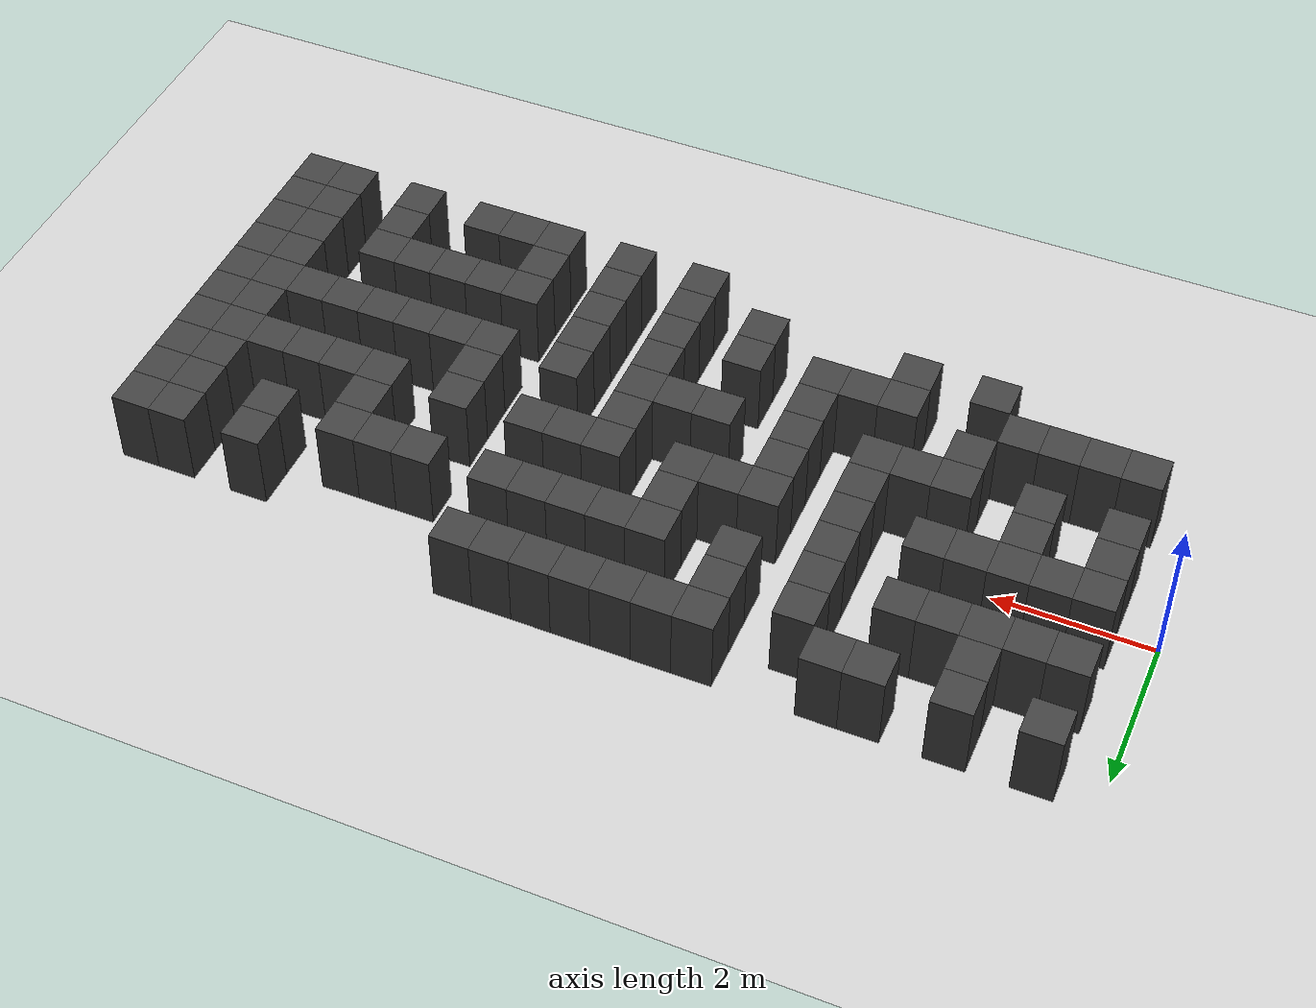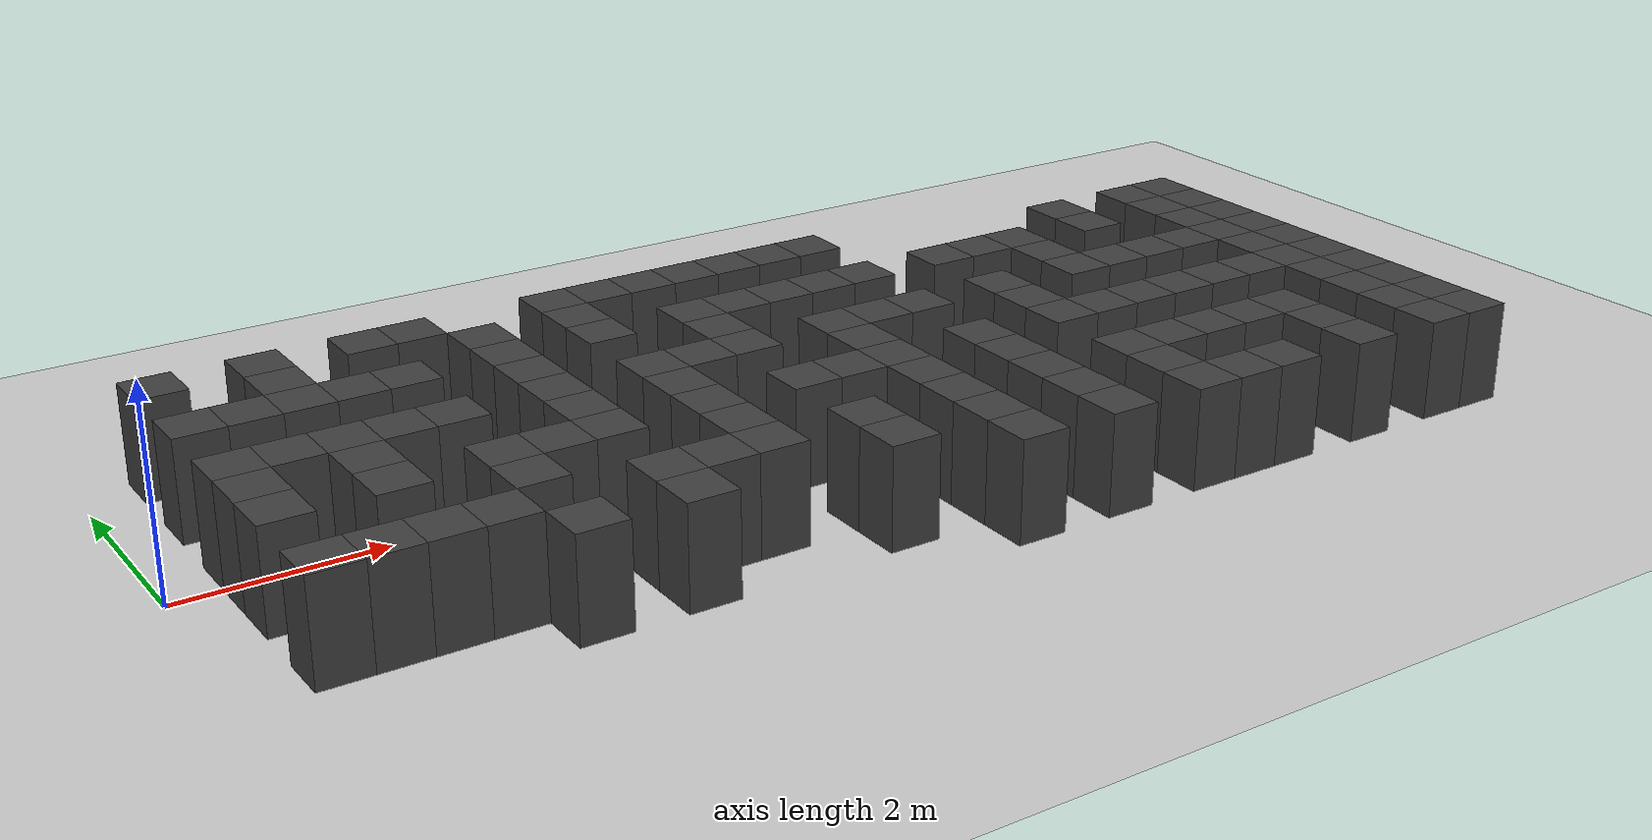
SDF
<sdf version="1.7">
 <world name="map_16603">
  <model name="ground_plane">
   <static>true</static>
   <link name="link">
    <collision name="collision">
     <geometry><plane><normal>0 0 1</normal><size>200 200</size></plane></geometry>
    </collision>
    <visual name="visual">
     <geometry><plane><normal>0 0 1</normal><size>200 200</size></plane></geometry>
     <material><ambient>0.8 0.8 0.8 1</ambient><diffuse>0.8 0.8 0.8 1</diffuse></material>
    </visual>
   </link>
  </model>
  <model name="maze_environment">
   <static>true</static>
   <link name="wall_501">
    <pose>0.750 2.250 0.500 0 0 0</pose>
    <collision name="col"><geometry><box><size>0.5 0.5 1.0</size></box></geometry></collision>
    <visual name="vis">
     <geometry><box><size>0.5 0.5 1.0</size></box></geometry>
     <material><ambient>0.15 0.15 0.15 1</ambient><diffuse>0.25 0.25 0.25 1</diffuse></material>
    </visual>
   </link>
   <link name="wall_502">
    <pose>1.750 2.250 0.500 0 0 0</pose>
    <collision name="col"><geometry><box><size>0.5 0.5 1.0</size></box></geometry></collision>
    <visual name="vis">
     <geometry><box><size>0.5 0.5 1.0</size></box></geometry>
     <material><ambient>0.15 0.15 0.15 1</ambient><diffuse>0.25 0.25 0.25 1</diffuse></material>
    </visual>
   </link>
   <link name="wall_503">
    <pose>2.750 2.250 0.500 0 0 0</pose>
    <collision name="col"><geometry><box><size>0.5 0.5 1.0</size></box></geometry></collision>
    <visual name="vis">
     <geometry><box><size>0.5 0.5 1.0</size></box></geometry>
     <material><ambient>0.15 0.15 0.15 1</ambient><diffuse>0.25 0.25 0.25 1</diffuse></material>
    </visual>
   </link>
   <link name="wall_504">
    <pose>3.250 2.250 0.500 0 0 0</pose>
    <collision name="col"><geometry><box><size>0.5 0.5 1.0</size></box></geometry></collision>
    <visual name="vis">
     <geometry><box><size>0.5 0.5 1.0</size></box></geometry>
     <material><ambient>0.15 0.15 0.15 1</ambient><diffuse>0.25 0.25 0.25 1</diffuse></material>
    </visual>
   </link>
   <link name="wall_505">
    <pose>4.750 2.250 0.500 0 0 0</pose>
    <collision name="col"><geometry><box><size>0.5 0.5 1.0</size></box></geometry></collision>
    <visual name="vis">
     <geometry><box><size>0.5 0.5 1.0</size></box></geometry>
     <material><ambient>0.15 0.15 0.15 1</ambient><diffuse>0.25 0.25 0.25 1</diffuse></material>
    </visual>
   </link>
   <link name="wall_506">
    <pose>5.250 2.250 0.500 0 0 0</pose>
    <collision name="col"><geometry><box><size>0.5 0.5 1.0</size></box></geometry></collision>
    <visual name="vis">
     <geometry><box><size>0.5 0.5 1.0</size></box></geometry>
     <material><ambient>0.15 0.15 0.15 1</ambient><diffuse>0.25 0.25 0.25 1</diffuse></material>
    </visual>
   </link>
   <link name="wall_507">
    <pose>5.750 2.250 0.500 0 0 0</pose>
    <collision name="col"><geometry><box><size>0.5 0.5 1.0</size></box></geometry></collision>
    <visual name="vis">
     <geometry><box><size>0.5 0.5 1.0</size></box></geometry>
     <material><ambient>0.15 0.15 0.15 1</ambient><diffuse>0.25 0.25 0.25 1</diffuse></material>
    </visual>
   </link>
   <link name="wall_508">
    <pose>6.250 2.250 0.500 0 0 0</pose>
    <collision name="col"><geometry><box><size>0.5 0.5 1.0</size></box></geometry></collision>
    <visual name="vis">
     <geometry><box><size>0.5 0.5 1.0</size></box></geometry>
     <material><ambient>0.15 0.15 0.15 1</ambient><diffuse>0.25 0.25 0.25 1</diffuse></material>
    </visual>
   </link>
   <link name="wall_509">
    <pose>6.750 2.250 0.500 0 0 0</pose>
    <collision name="col"><geometry><box><size>0.5 0.5 1.0</size></box></geometry></collision>
    <visual name="vis">
     <geometry><box><size>0.5 0.5 1.0</size></box></geometry>
     <material><ambient>0.15 0.15 0.15 1</ambient><diffuse>0.25 0.25 0.25 1</diffuse></material>
    </visual>
   </link>
   <link name="wall_510">
    <pose>7.250 2.250 0.500 0 0 0</pose>
    <collision name="col"><geometry><box><size>0.5 0.5 1.0</size></box></geometry></collision>
    <visual name="vis">
     <geometry><box><size>0.5 0.5 1.0</size></box></geometry>
     <material><ambient>0.15 0.15 0.15 1</ambient><diffuse>0.25 0.25 0.25 1</diffuse></material>
    </visual>
   </link>
   <link name="wall_511">
    <pose>7.750 2.250 0.500 0 0 0</pose>
    <collision name="col"><geometry><box><size>0.5 0.5 1.0</size></box></geometry></collision>
    <visual name="vis">
     <geometry><box><size>0.5 0.5 1.0</size></box></geometry>
     <material><ambient>0.15 0.15 0.15 1</ambient><diffuse>0.25 0.25 0.25 1</diffuse></material>
    </visual>
   </link>
   <link name="wall_525">
    <pose>1.750 1.750 0.500 0 0 0</pose>
    <collision name="col"><geometry><box><size>0.5 0.5 1.0</size></box></geometry></collision>
    <visual name="vis">
     <geometry><box><size>0.5 0.5 1.0</size></box></geometry>
     <material><ambient>0.15 0.15 0.15 1</ambient><diffuse>0.25 0.25 0.25 1</diffuse></material>
    </visual>
   </link>
   <link name="wall_526">
    <pose>3.750 1.750 0.500 0 0 0</pose>
    <collision name="col"><geometry><box><size>0.5 0.5 1.0</size></box></geometry></collision>
    <visual name="vis">
     <geometry><box><size>0.5 0.5 1.0</size></box></geometry>
     <material><ambient>0.15 0.15 0.15 1</ambient><diffuse>0.25 0.25 0.25 1</diffuse></material>
    </visual>
   </link>
   <link name="wall_527">
    <pose>4.750 1.750 0.500 0 0 0</pose>
    <collision name="col"><geometry><box><size>0.5 0.5 1.0</size></box></geometry></collision>
    <visual name="vis">
     <geometry><box><size>0.5 0.5 1.0</size></box></geometry>
     <material><ambient>0.15 0.15 0.15 1</ambient><diffuse>0.25 0.25 0.25 1</diffuse></material>
    </visual>
   </link>
   <link name="wall_528">
    <pose>10.750 1.750 0.500 0 0 0</pose>
    <collision name="col"><geometry><box><size>0.5 0.5 1.0</size></box></geometry></collision>
    <visual name="vis">
     <geometry><box><size>0.5 0.5 1.0</size></box></geometry>
     <material><ambient>0.15 0.15 0.15 1</ambient><diffuse>0.25 0.25 0.25 1</diffuse></material>
    </visual>
   </link>
   <link name="wall_529">
    <pose>11.750 1.750 0.500 0 0 0</pose>
    <collision name="col"><geometry><box><size>0.5 0.5 1.0</size></box></geometry></collision>
    <visual name="vis">
     <geometry><box><size>0.5 0.5 1.0</size></box></geometry>
     <material><ambient>0.15 0.15 0.15 1</ambient><diffuse>0.25 0.25 0.25 1</diffuse></material>
    </visual>
   </link>
   <link name="wall_530">
    <pose>12.250 1.750 0.500 0 0 0</pose>
    <collision name="col"><geometry><box><size>0.5 0.5 1.0</size></box></geometry></collision>
    <visual name="vis">
     <geometry><box><size>0.5 0.5 1.0</size></box></geometry>
     <material><ambient>0.15 0.15 0.15 1</ambient><diffuse>0.25 0.25 0.25 1</diffuse></material>
    </visual>
   </link>
   <link name="wall_551">
    <pose>0.750 1.250 0.500 0 0 0</pose>
    <collision name="col"><geometry><box><size>0.5 0.5 1.0</size></box></geometry></collision>
    <visual name="vis">
     <geometry><box><size>0.5 0.5 1.0</size></box></geometry>
     <material><ambient>0.15 0.15 0.15 1</ambient><diffuse>0.25 0.25 0.25 1</diffuse></material>
    </visual>
   </link>
   <link name="wall_552">
    <pose>1.250 1.250 0.500 0 0 0</pose>
    <collision name="col"><geometry><box><size>0.5 0.5 1.0</size></box></geometry></collision>
    <visual name="vis">
     <geometry><box><size>0.5 0.5 1.0</size></box></geometry>
     <material><ambient>0.15 0.15 0.15 1</ambient><diffuse>0.25 0.25 0.25 1</diffuse></material>
    </visual>
   </link>
   <link name="wall_553">
    <pose>1.750 1.250 0.500 0 0 0</pose>
    <collision name="col"><geometry><box><size>0.5 0.5 1.0</size></box></geometry></collision>
    <visual name="vis">
     <geometry><box><size>0.5 0.5 1.0</size></box></geometry>
     <material><ambient>0.15 0.15 0.15 1</ambient><diffuse>0.25 0.25 0.25 1</diffuse></material>
    </visual>
   </link>
   <link name="wall_554">
    <pose>2.250 1.250 0.500 0 0 0</pose>
    <collision name="col"><geometry><box><size>0.5 0.5 1.0</size></box></geometry></collision>
    <visual name="vis">
     <geometry><box><size>0.5 0.5 1.0</size></box></geometry>
     <material><ambient>0.15 0.15 0.15 1</ambient><diffuse>0.25 0.25 0.25 1</diffuse></material>
    </visual>
   </link>
   <link name="wall_555">
    <pose>2.750 1.250 0.500 0 0 0</pose>
    <collision name="col"><geometry><box><size>0.5 0.5 1.0</size></box></geometry></collision>
    <visual name="vis">
     <geometry><box><size>0.5 0.5 1.0</size></box></geometry>
     <material><ambient>0.15 0.15 0.15 1</ambient><diffuse>0.25 0.25 0.25 1</diffuse></material>
    </visual>
   </link>
   <link name="wall_556">
    <pose>3.750 1.250 0.500 0 0 0</pose>
    <collision name="col"><geometry><box><size>0.5 0.5 1.0</size></box></geometry></collision>
    <visual name="vis">
     <geometry><box><size>0.5 0.5 1.0</size></box></geometry>
     <material><ambient>0.15 0.15 0.15 1</ambient><diffuse>0.25 0.25 0.25 1</diffuse></material>
    </visual>
   </link>
   <link name="wall_557">
    <pose>4.750 1.250 0.500 0 0 0</pose>
    <collision name="col"><geometry><box><size>0.5 0.5 1.0</size></box></geometry></collision>
    <visual name="vis">
     <geometry><box><size>0.5 0.5 1.0</size></box></geometry>
     <material><ambient>0.15 0.15 0.15 1</ambient><diffuse>0.25 0.25 0.25 1</diffuse></material>
    </visual>
   </link>
   <link name="wall_558">
    <pose>5.750 1.250 0.500 0 0 0</pose>
    <collision name="col"><geometry><box><size>0.5 0.5 1.0</size></box></geometry></collision>
    <visual name="vis">
     <geometry><box><size>0.5 0.5 1.0</size></box></geometry>
     <material><ambient>0.15 0.15 0.15 1</ambient><diffuse>0.25 0.25 0.25 1</diffuse></material>
    </visual>
   </link>
   <link name="wall_559">
    <pose>6.250 1.250 0.500 0 0 0</pose>
    <collision name="col"><geometry><box><size>0.5 0.5 1.0</size></box></geometry></collision>
    <visual name="vis">
     <geometry><box><size>0.5 0.5 1.0</size></box></geometry>
     <material><ambient>0.15 0.15 0.15 1</ambient><diffuse>0.25 0.25 0.25 1</diffuse></material>
    </visual>
   </link>
   <link name="wall_560">
    <pose>6.750 1.250 0.500 0 0 0</pose>
    <collision name="col"><geometry><box><size>0.5 0.5 1.0</size></box></geometry></collision>
    <visual name="vis">
     <geometry><box><size>0.5 0.5 1.0</size></box></geometry>
     <material><ambient>0.15 0.15 0.15 1</ambient><diffuse>0.25 0.25 0.25 1</diffuse></material>
    </visual>
   </link>
   <link name="wall_561">
    <pose>7.250 1.250 0.500 0 0 0</pose>
    <collision name="col"><geometry><box><size>0.5 0.5 1.0</size></box></geometry></collision>
    <visual name="vis">
     <geometry><box><size>0.5 0.5 1.0</size></box></geometry>
     <material><ambient>0.15 0.15 0.15 1</ambient><diffuse>0.25 0.25 0.25 1</diffuse></material>
    </visual>
   </link>
   <link name="wall_562">
    <pose>7.750 1.250 0.500 0 0 0</pose>
    <collision name="col"><geometry><box><size>0.5 0.5 1.0</size></box></geometry></collision>
    <visual name="vis">
     <geometry><box><size>0.5 0.5 1.0</size></box></geometry>
     <material><ambient>0.15 0.15 0.15 1</ambient><diffuse>0.25 0.25 0.25 1</diffuse></material>
    </visual>
   </link>
   <link name="wall_563">
    <pose>8.750 1.250 0.500 0 0 0</pose>
    <collision name="col"><geometry><box><size>0.5 0.5 1.0</size></box></geometry></collision>
    <visual name="vis">
     <geometry><box><size>0.5 0.5 1.0</size></box></geometry>
     <material><ambient>0.15 0.15 0.15 1</ambient><diffuse>0.25 0.25 0.25 1</diffuse></material>
    </visual>
   </link>
   <link name="wall_564">
    <pose>9.250 1.250 0.500 0 0 0</pose>
    <collision name="col"><geometry><box><size>0.5 0.5 1.0</size></box></geometry></collision>
    <visual name="vis">
     <geometry><box><size>0.5 0.5 1.0</size></box></geometry>
     <material><ambient>0.15 0.15 0.15 1</ambient><diffuse>0.25 0.25 0.25 1</diffuse></material>
    </visual>
   </link>
   <link name="wall_565">
    <pose>9.750 1.250 0.500 0 0 0</pose>
    <collision name="col"><geometry><box><size>0.5 0.5 1.0</size></box></geometry></collision>
    <visual name="vis">
     <geometry><box><size>0.5 0.5 1.0</size></box></geometry>
     <material><ambient>0.15 0.15 0.15 1</ambient><diffuse>0.25 0.25 0.25 1</diffuse></material>
    </visual>
   </link>
   <link name="wall_566">
    <pose>10.750 1.250 0.500 0 0 0</pose>
    <collision name="col"><geometry><box><size>0.5 0.5 1.0</size></box></geometry></collision>
    <visual name="vis">
     <geometry><box><size>0.5 0.5 1.0</size></box></geometry>
     <material><ambient>0.15 0.15 0.15 1</ambient><diffuse>0.25 0.25 0.25 1</diffuse></material>
    </visual>
   </link>
   <link name="wall_567">
    <pose>11.750 1.250 0.500 0 0 0</pose>
    <collision name="col"><geometry><box><size>0.5 0.5 1.0</size></box></geometry></collision>
    <visual name="vis">
     <geometry><box><size>0.5 0.5 1.0</size></box></geometry>
     <material><ambient>0.15 0.15 0.15 1</ambient><diffuse>0.25 0.25 0.25 1</diffuse></material>
    </visual>
   </link>
   <link name="wall_568">
    <pose>12.250 1.250 0.500 0 0 0</pose>
    <collision name="col"><geometry><box><size>0.5 0.5 1.0</size></box></geometry></collision>
    <visual name="vis">
     <geometry><box><size>0.5 0.5 1.0</size></box></geometry>
     <material><ambient>0.15 0.15 0.15 1</ambient><diffuse>0.25 0.25 0.25 1</diffuse></material>
    </visual>
   </link>
   <link name="wall_574">
    <pose>3.750 0.750 0.500 0 0 0</pose>
    <collision name="col"><geometry><box><size>0.5 0.5 1.0</size></box></geometry></collision>
    <visual name="vis">
     <geometry><box><size>0.5 0.5 1.0</size></box></geometry>
     <material><ambient>0.15 0.15 0.15 1</ambient><diffuse>0.25 0.25 0.25 1</diffuse></material>
    </visual>
   </link>
   <link name="wall_575">
    <pose>5.750 0.750 0.500 0 0 0</pose>
    <collision name="col"><geometry><box><size>0.5 0.5 1.0</size></box></geometry></collision>
    <visual name="vis">
     <geometry><box><size>0.5 0.5 1.0</size></box></geometry>
     <material><ambient>0.15 0.15 0.15 1</ambient><diffuse>0.25 0.25 0.25 1</diffuse></material>
    </visual>
   </link>
   <link name="wall_576">
    <pose>9.750 0.750 0.500 0 0 0</pose>
    <collision name="col"><geometry><box><size>0.5 0.5 1.0</size></box></geometry></collision>
    <visual name="vis">
     <geometry><box><size>0.5 0.5 1.0</size></box></geometry>
     <material><ambient>0.15 0.15 0.15 1</ambient><diffuse>0.25 0.25 0.25 1</diffuse></material>
    </visual>
   </link>
   <link name="wall_577">
    <pose>11.750 0.750 0.500 0 0 0</pose>
    <collision name="col"><geometry><box><size>0.5 0.5 1.0</size></box></geometry></collision>
    <visual name="vis">
     <geometry><box><size>0.5 0.5 1.0</size></box></geometry>
     <material><ambient>0.15 0.15 0.15 1</ambient><diffuse>0.25 0.25 0.25 1</diffuse></material>
    </visual>
   </link>
   <link name="wall_578">
    <pose>12.250 0.750 0.500 0 0 0</pose>
    <collision name="col"><geometry><box><size>0.5 0.5 1.0</size></box></geometry></collision>
    <visual name="vis">
     <geometry><box><size>0.5 0.5 1.0</size></box></geometry>
     <material><ambient>0.15 0.15 0.15 1</ambient><diffuse>0.25 0.25 0.25 1</diffuse></material>
    </visual>
   </link>
   <link name="wall_595">
    <pose>0.750 0.250 0.500 0 0 0</pose>
    <collision name="col"><geometry><box><size>0.5 0.5 1.0</size></box></geometry></collision>
    <visual name="vis">
     <geometry><box><size>0.5 0.5 1.0</size></box></geometry>
     <material><ambient>0.15 0.15 0.15 1</ambient><diffuse>0.25 0.25 0.25 1</diffuse></material>
    </visual>
   </link>
   <link name="wall_596">
    <pose>1.250 0.250 0.500 0 0 0</pose>
    <collision name="col"><geometry><box><size>0.5 0.5 1.0</size></box></geometry></collision>
    <visual name="vis">
     <geometry><box><size>0.5 0.5 1.0</size></box></geometry>
     <material><ambient>0.15 0.15 0.15 1</ambient><diffuse>0.25 0.25 0.25 1</diffuse></material>
    </visual>
   </link>
   <link name="wall_597">
    <pose>1.750 0.250 0.500 0 0 0</pose>
    <collision name="col"><geometry><box><size>0.5 0.5 1.0</size></box></geometry></collision>
    <visual name="vis">
     <geometry><box><size>0.5 0.5 1.0</size></box></geometry>
     <material><ambient>0.15 0.15 0.15 1</ambient><diffuse>0.25 0.25 0.25 1</diffuse></material>
    </visual>
   </link>
   <link name="wall_598">
    <pose>2.250 0.250 0.500 0 0 0</pose>
    <collision name="col"><geometry><box><size>0.5 0.5 1.0</size></box></geometry></collision>
    <visual name="vis">
     <geometry><box><size>0.5 0.5 1.0</size></box></geometry>
     <material><ambient>0.15 0.15 0.15 1</ambient><diffuse>0.25 0.25 0.25 1</diffuse></material>
    </visual>
   </link>
   <link name="wall_599">
    <pose>2.750 0.250 0.500 0 0 0</pose>
    <collision name="col"><geometry><box><size>0.5 0.5 1.0</size></box></geometry></collision>
    <visual name="vis">
     <geometry><box><size>0.5 0.5 1.0</size></box></geometry>
     <material><ambient>0.15 0.15 0.15 1</ambient><diffuse>0.25 0.25 0.25 1</diffuse></material>
    </visual>
   </link>
   <link name="wall_600">
    <pose>3.750 0.250 0.500 0 0 0</pose>
    <collision name="col"><geometry><box><size>0.5 0.5 1.0</size></box></geometry></collision>
    <visual name="vis">
     <geometry><box><size>0.5 0.5 1.0</size></box></geometry>
     <material><ambient>0.15 0.15 0.15 1</ambient><diffuse>0.25 0.25 0.25 1</diffuse></material>
    </visual>
   </link>
   <link name="wall_601">
    <pose>4.750 0.250 0.500 0 0 0</pose>
    <collision name="col"><geometry><box><size>0.5 0.5 1.0</size></box></geometry></collision>
    <visual name="vis">
     <geometry><box><size>0.5 0.5 1.0</size></box></geometry>
     <material><ambient>0.15 0.15 0.15 1</ambient><diffuse>0.25 0.25 0.25 1</diffuse></material>
    </visual>
   </link>
   <link name="wall_602">
    <pose>5.250 0.250 0.500 0 0 0</pose>
    <collision name="col"><geometry><box><size>0.5 0.5 1.0</size></box></geometry></collision>
    <visual name="vis">
     <geometry><box><size>0.5 0.5 1.0</size></box></geometry>
     <material><ambient>0.15 0.15 0.15 1</ambient><diffuse>0.25 0.25 0.25 1</diffuse></material>
    </visual>
   </link>
   <link name="wall_603">
    <pose>5.750 0.250 0.500 0 0 0</pose>
    <collision name="col"><geometry><box><size>0.5 0.5 1.0</size></box></geometry></collision>
    <visual name="vis">
     <geometry><box><size>0.5 0.5 1.0</size></box></geometry>
     <material><ambient>0.15 0.15 0.15 1</ambient><diffuse>0.25 0.25 0.25 1</diffuse></material>
    </visual>
   </link>
   <link name="wall_604">
    <pose>6.750 0.250 0.500 0 0 0</pose>
    <collision name="col"><geometry><box><size>0.5 0.5 1.0</size></box></geometry></collision>
    <visual name="vis">
     <geometry><box><size>0.5 0.5 1.0</size></box></geometry>
     <material><ambient>0.15 0.15 0.15 1</ambient><diffuse>0.25 0.25 0.25 1</diffuse></material>
    </visual>
   </link>
   <link name="wall_605">
    <pose>7.250 0.250 0.500 0 0 0</pose>
    <collision name="col"><geometry><box><size>0.5 0.5 1.0</size></box></geometry></collision>
    <visual name="vis">
     <geometry><box><size>0.5 0.5 1.0</size></box></geometry>
     <material><ambient>0.15 0.15 0.15 1</ambient><diffuse>0.25 0.25 0.25 1</diffuse></material>
    </visual>
   </link>
   <link name="wall_606">
    <pose>7.750 0.250 0.500 0 0 0</pose>
    <collision name="col"><geometry><box><size>0.5 0.5 1.0</size></box></geometry></collision>
    <visual name="vis">
     <geometry><box><size>0.5 0.5 1.0</size></box></geometry>
     <material><ambient>0.15 0.15 0.15 1</ambient><diffuse>0.25 0.25 0.25 1</diffuse></material>
    </visual>
   </link>
   <link name="wall_607">
    <pose>8.750 0.250 0.500 0 0 0</pose>
    <collision name="col"><geometry><box><size>0.5 0.5 1.0</size></box></geometry></collision>
    <visual name="vis">
     <geometry><box><size>0.5 0.5 1.0</size></box></geometry>
     <material><ambient>0.15 0.15 0.15 1</ambient><diffuse>0.25 0.25 0.25 1</diffuse></material>
    </visual>
   </link>
   <link name="wall_608">
    <pose>9.750 0.250 0.500 0 0 0</pose>
    <collision name="col"><geometry><box><size>0.5 0.5 1.0</size></box></geometry></collision>
    <visual name="vis">
     <geometry><box><size>0.5 0.5 1.0</size></box></geometry>
     <material><ambient>0.15 0.15 0.15 1</ambient><diffuse>0.25 0.25 0.25 1</diffuse></material>
    </visual>
   </link>
   <link name="wall_609">
    <pose>10.250 0.250 0.500 0 0 0</pose>
    <collision name="col"><geometry><box><size>0.5 0.5 1.0</size></box></geometry></collision>
    <visual name="vis">
     <geometry><box><size>0.5 0.5 1.0</size></box></geometry>
     <material><ambient>0.15 0.15 0.15 1</ambient><diffuse>0.25 0.25 0.25 1</diffuse></material>
    </visual>
   </link>
   <link name="wall_610">
    <pose>10.750 0.250 0.500 0 0 0</pose>
    <collision name="col"><geometry><box><size>0.5 0.5 1.0</size></box></geometry></collision>
    <visual name="vis">
     <geometry><box><size>0.5 0.5 1.0</size></box></geometry>
     <material><ambient>0.15 0.15 0.15 1</ambient><diffuse>0.25 0.25 0.25 1</diffuse></material>
    </visual>
   </link>
   <link name="wall_611">
    <pose>11.250 0.250 0.500 0 0 0</pose>
    <collision name="col"><geometry><box><size>0.5 0.5 1.0</size></box></geometry></collision>
    <visual name="vis">
     <geometry><box><size>0.5 0.5 1.0</size></box></geometry>
     <material><ambient>0.15 0.15 0.15 1</ambient><diffuse>0.25 0.25 0.25 1</diffuse></material>
    </visual>
   </link>
   <link name="wall_612">
    <pose>11.750 0.250 0.500 0 0 0</pose>
    <collision name="col"><geometry><box><size>0.5 0.5 1.0</size></box></geometry></collision>
    <visual name="vis">
     <geometry><box><size>0.5 0.5 1.0</size></box></geometry>
     <material><ambient>0.15 0.15 0.15 1</ambient><diffuse>0.25 0.25 0.25 1</diffuse></material>
    </visual>
   </link>
   <link name="wall_613">
    <pose>12.250 0.250 0.500 0 0 0</pose>
    <collision name="col"><geometry><box><size>0.5 0.5 1.0</size></box></geometry></collision>
    <visual name="vis">
     <geometry><box><size>0.5 0.5 1.0</size></box></geometry>
     <material><ambient>0.15 0.15 0.15 1</ambient><diffuse>0.25 0.25 0.25 1</diffuse></material>
    </visual>
   </link>
   <link name="wall_621">
    <pose>0.750 -0.250 0.500 0 0 0</pose>
    <collision name="col"><geometry><box><size>0.5 0.5 1.0</size></box></geometry></collision>
    <visual name="vis">
     <geometry><box><size>0.5 0.5 1.0</size></box></geometry>
     <material><ambient>0.15 0.15 0.15 1</ambient><diffuse>0.25 0.25 0.25 1</diffuse></material>
    </visual>
   </link>
   <link name="wall_622">
    <pose>1.750 -0.250 0.500 0 0 0</pose>
    <collision name="col"><geometry><box><size>0.5 0.5 1.0</size></box></geometry></collision>
    <visual name="vis">
     <geometry><box><size>0.5 0.5 1.0</size></box></geometry>
     <material><ambient>0.15 0.15 0.15 1</ambient><diffuse>0.25 0.25 0.25 1</diffuse></material>
    </visual>
   </link>
   <link name="wall_623">
    <pose>3.750 -0.250 0.500 0 0 0</pose>
    <collision name="col"><geometry><box><size>0.5 0.5 1.0</size></box></geometry></collision>
    <visual name="vis">
     <geometry><box><size>0.5 0.5 1.0</size></box></geometry>
     <material><ambient>0.15 0.15 0.15 1</ambient><diffuse>0.25 0.25 0.25 1</diffuse></material>
    </visual>
   </link>
   <link name="wall_624">
    <pose>4.750 -0.250 0.500 0 0 0</pose>
    <collision name="col"><geometry><box><size>0.5 0.5 1.0</size></box></geometry></collision>
    <visual name="vis">
     <geometry><box><size>0.5 0.5 1.0</size></box></geometry>
     <material><ambient>0.15 0.15 0.15 1</ambient><diffuse>0.25 0.25 0.25 1</diffuse></material>
    </visual>
   </link>
   <link name="wall_625">
    <pose>6.750 -0.250 0.500 0 0 0</pose>
    <collision name="col"><geometry><box><size>0.5 0.5 1.0</size></box></geometry></collision>
    <visual name="vis">
     <geometry><box><size>0.5 0.5 1.0</size></box></geometry>
     <material><ambient>0.15 0.15 0.15 1</ambient><diffuse>0.25 0.25 0.25 1</diffuse></material>
    </visual>
   </link>
   <link name="wall_626">
    <pose>8.750 -0.250 0.500 0 0 0</pose>
    <collision name="col"><geometry><box><size>0.5 0.5 1.0</size></box></geometry></collision>
    <visual name="vis">
     <geometry><box><size>0.5 0.5 1.0</size></box></geometry>
     <material><ambient>0.15 0.15 0.15 1</ambient><diffuse>0.25 0.25 0.25 1</diffuse></material>
    </visual>
   </link>
   <link name="wall_627">
    <pose>11.750 -0.250 0.500 0 0 0</pose>
    <collision name="col"><geometry><box><size>0.5 0.5 1.0</size></box></geometry></collision>
    <visual name="vis">
     <geometry><box><size>0.5 0.5 1.0</size></box></geometry>
     <material><ambient>0.15 0.15 0.15 1</ambient><diffuse>0.25 0.25 0.25 1</diffuse></material>
    </visual>
   </link>
   <link name="wall_628">
    <pose>12.250 -0.250 0.500 0 0 0</pose>
    <collision name="col"><geometry><box><size>0.5 0.5 1.0</size></box></geometry></collision>
    <visual name="vis">
     <geometry><box><size>0.5 0.5 1.0</size></box></geometry>
     <material><ambient>0.15 0.15 0.15 1</ambient><diffuse>0.25 0.25 0.25 1</diffuse></material>
    </visual>
   </link>
   <link name="wall_646">
    <pose>0.750 -0.750 0.500 0 0 0</pose>
    <collision name="col"><geometry><box><size>0.5 0.5 1.0</size></box></geometry></collision>
    <visual name="vis">
     <geometry><box><size>0.5 0.5 1.0</size></box></geometry>
     <material><ambient>0.15 0.15 0.15 1</ambient><diffuse>0.25 0.25 0.25 1</diffuse></material>
    </visual>
   </link>
   <link name="wall_647">
    <pose>1.750 -0.750 0.500 0 0 0</pose>
    <collision name="col"><geometry><box><size>0.5 0.5 1.0</size></box></geometry></collision>
    <visual name="vis">
     <geometry><box><size>0.5 0.5 1.0</size></box></geometry>
     <material><ambient>0.15 0.15 0.15 1</ambient><diffuse>0.25 0.25 0.25 1</diffuse></material>
    </visual>
   </link>
   <link name="wall_648">
    <pose>2.750 -0.750 0.500 0 0 0</pose>
    <collision name="col"><geometry><box><size>0.5 0.5 1.0</size></box></geometry></collision>
    <visual name="vis">
     <geometry><box><size>0.5 0.5 1.0</size></box></geometry>
     <material><ambient>0.15 0.15 0.15 1</ambient><diffuse>0.25 0.25 0.25 1</diffuse></material>
    </visual>
   </link>
   <link name="wall_649">
    <pose>3.250 -0.750 0.500 0 0 0</pose>
    <collision name="col"><geometry><box><size>0.5 0.5 1.0</size></box></geometry></collision>
    <visual name="vis">
     <geometry><box><size>0.5 0.5 1.0</size></box></geometry>
     <material><ambient>0.15 0.15 0.15 1</ambient><diffuse>0.25 0.25 0.25 1</diffuse></material>
    </visual>
   </link>
   <link name="wall_650">
    <pose>3.750 -0.750 0.500 0 0 0</pose>
    <collision name="col"><geometry><box><size>0.5 0.5 1.0</size></box></geometry></collision>
    <visual name="vis">
     <geometry><box><size>0.5 0.5 1.0</size></box></geometry>
     <material><ambient>0.15 0.15 0.15 1</ambient><diffuse>0.25 0.25 0.25 1</diffuse></material>
    </visual>
   </link>
   <link name="wall_651">
    <pose>4.750 -0.750 0.500 0 0 0</pose>
    <collision name="col"><geometry><box><size>0.5 0.5 1.0</size></box></geometry></collision>
    <visual name="vis">
     <geometry><box><size>0.5 0.5 1.0</size></box></geometry>
     <material><ambient>0.15 0.15 0.15 1</ambient><diffuse>0.25 0.25 0.25 1</diffuse></material>
    </visual>
   </link>
   <link name="wall_652">
    <pose>5.750 -0.750 0.500 0 0 0</pose>
    <collision name="col"><geometry><box><size>0.5 0.5 1.0</size></box></geometry></collision>
    <visual name="vis">
     <geometry><box><size>0.5 0.5 1.0</size></box></geometry>
     <material><ambient>0.15 0.15 0.15 1</ambient><diffuse>0.25 0.25 0.25 1</diffuse></material>
    </visual>
   </link>
   <link name="wall_653">
    <pose>6.250 -0.750 0.500 0 0 0</pose>
    <collision name="col"><geometry><box><size>0.5 0.5 1.0</size></box></geometry></collision>
    <visual name="vis">
     <geometry><box><size>0.5 0.5 1.0</size></box></geometry>
     <material><ambient>0.15 0.15 0.15 1</ambient><diffuse>0.25 0.25 0.25 1</diffuse></material>
    </visual>
   </link>
   <link name="wall_654">
    <pose>6.750 -0.750 0.500 0 0 0</pose>
    <collision name="col"><geometry><box><size>0.5 0.5 1.0</size></box></geometry></collision>
    <visual name="vis">
     <geometry><box><size>0.5 0.5 1.0</size></box></geometry>
     <material><ambient>0.15 0.15 0.15 1</ambient><diffuse>0.25 0.25 0.25 1</diffuse></material>
    </visual>
   </link>
   <link name="wall_655">
    <pose>7.750 -0.750 0.500 0 0 0</pose>
    <collision name="col"><geometry><box><size>0.5 0.5 1.0</size></box></geometry></collision>
    <visual name="vis">
     <geometry><box><size>0.5 0.5 1.0</size></box></geometry>
     <material><ambient>0.15 0.15 0.15 1</ambient><diffuse>0.25 0.25 0.25 1</diffuse></material>
    </visual>
   </link>
   <link name="wall_656">
    <pose>8.750 -0.750 0.500 0 0 0</pose>
    <collision name="col"><geometry><box><size>0.5 0.5 1.0</size></box></geometry></collision>
    <visual name="vis">
     <geometry><box><size>0.5 0.5 1.0</size></box></geometry>
     <material><ambient>0.15 0.15 0.15 1</ambient><diffuse>0.25 0.25 0.25 1</diffuse></material>
    </visual>
   </link>
   <link name="wall_657">
    <pose>9.250 -0.750 0.500 0 0 0</pose>
    <collision name="col"><geometry><box><size>0.5 0.5 1.0</size></box></geometry></collision>
    <visual name="vis">
     <geometry><box><size>0.5 0.5 1.0</size></box></geometry>
     <material><ambient>0.15 0.15 0.15 1</ambient><diffuse>0.25 0.25 0.25 1</diffuse></material>
    </visual>
   </link>
   <link name="wall_658">
    <pose>9.750 -0.750 0.500 0 0 0</pose>
    <collision name="col"><geometry><box><size>0.5 0.5 1.0</size></box></geometry></collision>
    <visual name="vis">
     <geometry><box><size>0.5 0.5 1.0</size></box></geometry>
     <material><ambient>0.15 0.15 0.15 1</ambient><diffuse>0.25 0.25 0.25 1</diffuse></material>
    </visual>
   </link>
   <link name="wall_659">
    <pose>10.250 -0.750 0.500 0 0 0</pose>
    <collision name="col"><geometry><box><size>0.5 0.5 1.0</size></box></geometry></collision>
    <visual name="vis">
     <geometry><box><size>0.5 0.5 1.0</size></box></geometry>
     <material><ambient>0.15 0.15 0.15 1</ambient><diffuse>0.25 0.25 0.25 1</diffuse></material>
    </visual>
   </link>
   <link name="wall_660">
    <pose>10.750 -0.750 0.500 0 0 0</pose>
    <collision name="col"><geometry><box><size>0.5 0.5 1.0</size></box></geometry></collision>
    <visual name="vis">
     <geometry><box><size>0.5 0.5 1.0</size></box></geometry>
     <material><ambient>0.15 0.15 0.15 1</ambient><diffuse>0.25 0.25 0.25 1</diffuse></material>
    </visual>
   </link>
   <link name="wall_661">
    <pose>11.250 -0.750 0.500 0 0 0</pose>
    <collision name="col"><geometry><box><size>0.5 0.5 1.0</size></box></geometry></collision>
    <visual name="vis">
     <geometry><box><size>0.5 0.5 1.0</size></box></geometry>
     <material><ambient>0.15 0.15 0.15 1</ambient><diffuse>0.25 0.25 0.25 1</diffuse></material>
    </visual>
   </link>
   <link name="wall_662">
    <pose>11.750 -0.750 0.500 0 0 0</pose>
    <collision name="col"><geometry><box><size>0.5 0.5 1.0</size></box></geometry></collision>
    <visual name="vis">
     <geometry><box><size>0.5 0.5 1.0</size></box></geometry>
     <material><ambient>0.15 0.15 0.15 1</ambient><diffuse>0.25 0.25 0.25 1</diffuse></material>
    </visual>
   </link>
   <link name="wall_663">
    <pose>12.250 -0.750 0.500 0 0 0</pose>
    <collision name="col"><geometry><box><size>0.5 0.5 1.0</size></box></geometry></collision>
    <visual name="vis">
     <geometry><box><size>0.5 0.5 1.0</size></box></geometry>
     <material><ambient>0.15 0.15 0.15 1</ambient><diffuse>0.25 0.25 0.25 1</diffuse></material>
    </visual>
   </link>
   <link name="wall_669">
    <pose>2.750 -1.250 0.500 0 0 0</pose>
    <collision name="col"><geometry><box><size>0.5 0.5 1.0</size></box></geometry></collision>
    <visual name="vis">
     <geometry><box><size>0.5 0.5 1.0</size></box></geometry>
     <material><ambient>0.15 0.15 0.15 1</ambient><diffuse>0.25 0.25 0.25 1</diffuse></material>
    </visual>
   </link>
   <link name="wall_670">
    <pose>4.750 -1.250 0.500 0 0 0</pose>
    <collision name="col"><geometry><box><size>0.5 0.5 1.0</size></box></geometry></collision>
    <visual name="vis">
     <geometry><box><size>0.5 0.5 1.0</size></box></geometry>
     <material><ambient>0.15 0.15 0.15 1</ambient><diffuse>0.25 0.25 0.25 1</diffuse></material>
    </visual>
   </link>
   <link name="wall_671">
    <pose>6.750 -1.250 0.500 0 0 0</pose>
    <collision name="col"><geometry><box><size>0.5 0.5 1.0</size></box></geometry></collision>
    <visual name="vis">
     <geometry><box><size>0.5 0.5 1.0</size></box></geometry>
     <material><ambient>0.15 0.15 0.15 1</ambient><diffuse>0.25 0.25 0.25 1</diffuse></material>
    </visual>
   </link>
   <link name="wall_672">
    <pose>7.750 -1.250 0.500 0 0 0</pose>
    <collision name="col"><geometry><box><size>0.5 0.5 1.0</size></box></geometry></collision>
    <visual name="vis">
     <geometry><box><size>0.5 0.5 1.0</size></box></geometry>
     <material><ambient>0.15 0.15 0.15 1</ambient><diffuse>0.25 0.25 0.25 1</diffuse></material>
    </visual>
   </link>
   <link name="wall_673">
    <pose>11.750 -1.250 0.500 0 0 0</pose>
    <collision name="col"><geometry><box><size>0.5 0.5 1.0</size></box></geometry></collision>
    <visual name="vis">
     <geometry><box><size>0.5 0.5 1.0</size></box></geometry>
     <material><ambient>0.15 0.15 0.15 1</ambient><diffuse>0.25 0.25 0.25 1</diffuse></material>
    </visual>
   </link>
   <link name="wall_674">
    <pose>12.250 -1.250 0.500 0 0 0</pose>
    <collision name="col"><geometry><box><size>0.5 0.5 1.0</size></box></geometry></collision>
    <visual name="vis">
     <geometry><box><size>0.5 0.5 1.0</size></box></geometry>
     <material><ambient>0.15 0.15 0.15 1</ambient><diffuse>0.25 0.25 0.25 1</diffuse></material>
    </visual>
   </link>
   <link name="wall_697">
    <pose>0.750 -1.750 0.500 0 0 0</pose>
    <collision name="col"><geometry><box><size>0.5 0.5 1.0</size></box></geometry></collision>
    <visual name="vis">
     <geometry><box><size>0.5 0.5 1.0</size></box></geometry>
     <material><ambient>0.15 0.15 0.15 1</ambient><diffuse>0.25 0.25 0.25 1</diffuse></material>
    </visual>
   </link>
   <link name="wall_698">
    <pose>1.250 -1.750 0.500 0 0 0</pose>
    <collision name="col"><geometry><box><size>0.5 0.5 1.0</size></box></geometry></collision>
    <visual name="vis">
     <geometry><box><size>0.5 0.5 1.0</size></box></geometry>
     <material><ambient>0.15 0.15 0.15 1</ambient><diffuse>0.25 0.25 0.25 1</diffuse></material>
    </visual>
   </link>
   <link name="wall_699">
    <pose>1.750 -1.750 0.500 0 0 0</pose>
    <collision name="col"><geometry><box><size>0.5 0.5 1.0</size></box></geometry></collision>
    <visual name="vis">
     <geometry><box><size>0.5 0.5 1.0</size></box></geometry>
     <material><ambient>0.15 0.15 0.15 1</ambient><diffuse>0.25 0.25 0.25 1</diffuse></material>
    </visual>
   </link>
   <link name="wall_700">
    <pose>2.250 -1.750 0.500 0 0 0</pose>
    <collision name="col"><geometry><box><size>0.5 0.5 1.0</size></box></geometry></collision>
    <visual name="vis">
     <geometry><box><size>0.5 0.5 1.0</size></box></geometry>
     <material><ambient>0.15 0.15 0.15 1</ambient><diffuse>0.25 0.25 0.25 1</diffuse></material>
    </visual>
   </link>
   <link name="wall_701">
    <pose>3.750 -1.750 0.500 0 0 0</pose>
    <collision name="col"><geometry><box><size>0.5 0.5 1.0</size></box></geometry></collision>
    <visual name="vis">
     <geometry><box><size>0.5 0.5 1.0</size></box></geometry>
     <material><ambient>0.15 0.15 0.15 1</ambient><diffuse>0.25 0.25 0.25 1</diffuse></material>
    </visual>
   </link>
   <link name="wall_702">
    <pose>4.250 -1.750 0.500 0 0 0</pose>
    <collision name="col"><geometry><box><size>0.5 0.5 1.0</size></box></geometry></collision>
    <visual name="vis">
     <geometry><box><size>0.5 0.5 1.0</size></box></geometry>
     <material><ambient>0.15 0.15 0.15 1</ambient><diffuse>0.25 0.25 0.25 1</diffuse></material>
    </visual>
   </link>
   <link name="wall_703">
    <pose>4.750 -1.750 0.500 0 0 0</pose>
    <collision name="col"><geometry><box><size>0.5 0.5 1.0</size></box></geometry></collision>
    <visual name="vis">
     <geometry><box><size>0.5 0.5 1.0</size></box></geometry>
     <material><ambient>0.15 0.15 0.15 1</ambient><diffuse>0.25 0.25 0.25 1</diffuse></material>
    </visual>
   </link>
   <link name="wall_704">
    <pose>5.750 -1.750 0.500 0 0 0</pose>
    <collision name="col"><geometry><box><size>0.5 0.5 1.0</size></box></geometry></collision>
    <visual name="vis">
     <geometry><box><size>0.5 0.5 1.0</size></box></geometry>
     <material><ambient>0.15 0.15 0.15 1</ambient><diffuse>0.25 0.25 0.25 1</diffuse></material>
    </visual>
   </link>
   <link name="wall_705">
    <pose>6.750 -1.750 0.500 0 0 0</pose>
    <collision name="col"><geometry><box><size>0.5 0.5 1.0</size></box></geometry></collision>
    <visual name="vis">
     <geometry><box><size>0.5 0.5 1.0</size></box></geometry>
     <material><ambient>0.15 0.15 0.15 1</ambient><diffuse>0.25 0.25 0.25 1</diffuse></material>
    </visual>
   </link>
   <link name="wall_706">
    <pose>7.750 -1.750 0.500 0 0 0</pose>
    <collision name="col"><geometry><box><size>0.5 0.5 1.0</size></box></geometry></collision>
    <visual name="vis">
     <geometry><box><size>0.5 0.5 1.0</size></box></geometry>
     <material><ambient>0.15 0.15 0.15 1</ambient><diffuse>0.25 0.25 0.25 1</diffuse></material>
    </visual>
   </link>
   <link name="wall_707">
    <pose>8.750 -1.750 0.500 0 0 0</pose>
    <collision name="col"><geometry><box><size>0.5 0.5 1.0</size></box></geometry></collision>
    <visual name="vis">
     <geometry><box><size>0.5 0.5 1.0</size></box></geometry>
     <material><ambient>0.15 0.15 0.15 1</ambient><diffuse>0.25 0.25 0.25 1</diffuse></material>
    </visual>
   </link>
   <link name="wall_708">
    <pose>9.250 -1.750 0.500 0 0 0</pose>
    <collision name="col"><geometry><box><size>0.5 0.5 1.0</size></box></geometry></collision>
    <visual name="vis">
     <geometry><box><size>0.5 0.5 1.0</size></box></geometry>
     <material><ambient>0.15 0.15 0.15 1</ambient><diffuse>0.25 0.25 0.25 1</diffuse></material>
    </visual>
   </link>
   <link name="wall_709">
    <pose>9.750 -1.750 0.500 0 0 0</pose>
    <collision name="col"><geometry><box><size>0.5 0.5 1.0</size></box></geometry></collision>
    <visual name="vis">
     <geometry><box><size>0.5 0.5 1.0</size></box></geometry>
     <material><ambient>0.15 0.15 0.15 1</ambient><diffuse>0.25 0.25 0.25 1</diffuse></material>
    </visual>
   </link>
   <link name="wall_710">
    <pose>10.250 -1.750 0.500 0 0 0</pose>
    <collision name="col"><geometry><box><size>0.5 0.5 1.0</size></box></geometry></collision>
    <visual name="vis">
     <geometry><box><size>0.5 0.5 1.0</size></box></geometry>
     <material><ambient>0.15 0.15 0.15 1</ambient><diffuse>0.25 0.25 0.25 1</diffuse></material>
    </visual>
   </link>
   <link name="wall_711">
    <pose>10.750 -1.750 0.500 0 0 0</pose>
    <collision name="col"><geometry><box><size>0.5 0.5 1.0</size></box></geometry></collision>
    <visual name="vis">
     <geometry><box><size>0.5 0.5 1.0</size></box></geometry>
     <material><ambient>0.15 0.15 0.15 1</ambient><diffuse>0.25 0.25 0.25 1</diffuse></material>
    </visual>
   </link>
   <link name="wall_712">
    <pose>11.750 -1.750 0.500 0 0 0</pose>
    <collision name="col"><geometry><box><size>0.5 0.5 1.0</size></box></geometry></collision>
    <visual name="vis">
     <geometry><box><size>0.5 0.5 1.0</size></box></geometry>
     <material><ambient>0.15 0.15 0.15 1</ambient><diffuse>0.25 0.25 0.25 1</diffuse></material>
    </visual>
   </link>
   <link name="wall_713">
    <pose>12.250 -1.750 0.500 0 0 0</pose>
    <collision name="col"><geometry><box><size>0.5 0.5 1.0</size></box></geometry></collision>
    <visual name="vis">
     <geometry><box><size>0.5 0.5 1.0</size></box></geometry>
     <material><ambient>0.15 0.15 0.15 1</ambient><diffuse>0.25 0.25 0.25 1</diffuse></material>
    </visual>
   </link>
   <link name="wall_721">
    <pose>2.750 -2.250 0.500 0 0 0</pose>
    <collision name="col"><geometry><box><size>0.5 0.5 1.0</size></box></geometry></collision>
    <visual name="vis">
     <geometry><box><size>0.5 0.5 1.0</size></box></geometry>
     <material><ambient>0.15 0.15 0.15 1</ambient><diffuse>0.25 0.25 0.25 1</diffuse></material>
    </visual>
   </link>
   <link name="wall_722">
    <pose>3.750 -2.250 0.500 0 0 0</pose>
    <collision name="col"><geometry><box><size>0.5 0.5 1.0</size></box></geometry></collision>
    <visual name="vis">
     <geometry><box><size>0.5 0.5 1.0</size></box></geometry>
     <material><ambient>0.15 0.15 0.15 1</ambient><diffuse>0.25 0.25 0.25 1</diffuse></material>
    </visual>
   </link>
   <link name="wall_723">
    <pose>5.750 -2.250 0.500 0 0 0</pose>
    <collision name="col"><geometry><box><size>0.5 0.5 1.0</size></box></geometry></collision>
    <visual name="vis">
     <geometry><box><size>0.5 0.5 1.0</size></box></geometry>
     <material><ambient>0.15 0.15 0.15 1</ambient><diffuse>0.25 0.25 0.25 1</diffuse></material>
    </visual>
   </link>
   <link name="wall_724">
    <pose>6.750 -2.250 0.500 0 0 0</pose>
    <collision name="col"><geometry><box><size>0.5 0.5 1.0</size></box></geometry></collision>
    <visual name="vis">
     <geometry><box><size>0.5 0.5 1.0</size></box></geometry>
     <material><ambient>0.15 0.15 0.15 1</ambient><diffuse>0.25 0.25 0.25 1</diffuse></material>
    </visual>
   </link>
   <link name="wall_725">
    <pose>7.750 -2.250 0.500 0 0 0</pose>
    <collision name="col"><geometry><box><size>0.5 0.5 1.0</size></box></geometry></collision>
    <visual name="vis">
     <geometry><box><size>0.5 0.5 1.0</size></box></geometry>
     <material><ambient>0.15 0.15 0.15 1</ambient><diffuse>0.25 0.25 0.25 1</diffuse></material>
    </visual>
   </link>
   <link name="wall_726">
    <pose>8.750 -2.250 0.500 0 0 0</pose>
    <collision name="col"><geometry><box><size>0.5 0.5 1.0</size></box></geometry></collision>
    <visual name="vis">
     <geometry><box><size>0.5 0.5 1.0</size></box></geometry>
     <material><ambient>0.15 0.15 0.15 1</ambient><diffuse>0.25 0.25 0.25 1</diffuse></material>
    </visual>
   </link>
   <link name="wall_727">
    <pose>10.750 -2.250 0.500 0 0 0</pose>
    <collision name="col"><geometry><box><size>0.5 0.5 1.0</size></box></geometry></collision>
    <visual name="vis">
     <geometry><box><size>0.5 0.5 1.0</size></box></geometry>
     <material><ambient>0.15 0.15 0.15 1</ambient><diffuse>0.25 0.25 0.25 1</diffuse></material>
    </visual>
   </link>
   <link name="wall_728">
    <pose>11.750 -2.250 0.500 0 0 0</pose>
    <collision name="col"><geometry><box><size>0.5 0.5 1.0</size></box></geometry></collision>
    <visual name="vis">
     <geometry><box><size>0.5 0.5 1.0</size></box></geometry>
     <material><ambient>0.15 0.15 0.15 1</ambient><diffuse>0.25 0.25 0.25 1</diffuse></material>
    </visual>
   </link>
   <link name="wall_729">
    <pose>12.250 -2.250 0.500 0 0 0</pose>
    <collision name="col"><geometry><box><size>0.5 0.5 1.0</size></box></geometry></collision>
    <visual name="vis">
     <geometry><box><size>0.5 0.5 1.0</size></box></geometry>
     <material><ambient>0.15 0.15 0.15 1</ambient><diffuse>0.25 0.25 0.25 1</diffuse></material>
    </visual>
   </link>
   <link name="wall_757">
    <pose>6.750 -2.750 0.500 0 0 0</pose>
    <collision name="col"><geometry><box><size>0.5 0.5 1.0</size></box></geometry></collision>
    <visual name="vis">
     <geometry><box><size>0.5 0.5 1.0</size></box></geometry>
     <material><ambient>0.15 0.15 0.15 1</ambient><diffuse>0.25 0.25 0.25 1</diffuse></material>
    </visual>
   </link>
   <link name="wall_758">
    <pose>7.750 -2.750 0.500 0 0 0</pose>
    <collision name="col"><geometry><box><size>0.5 0.5 1.0</size></box></geometry></collision>
    <visual name="vis">
     <geometry><box><size>0.5 0.5 1.0</size></box></geometry>
     <material><ambient>0.15 0.15 0.15 1</ambient><diffuse>0.25 0.25 0.25 1</diffuse></material>
    </visual>
   </link>
   <link name="wall_759">
    <pose>8.750 -2.750 0.500 0 0 0</pose>
    <collision name="col"><geometry><box><size>0.5 0.5 1.0</size></box></geometry></collision>
    <visual name="vis">
     <geometry><box><size>0.5 0.5 1.0</size></box></geometry>
     <material><ambient>0.15 0.15 0.15 1</ambient><diffuse>0.25 0.25 0.25 1</diffuse></material>
    </visual>
   </link>
   <link name="wall_760">
    <pose>9.250 -2.750 0.500 0 0 0</pose>
    <collision name="col"><geometry><box><size>0.5 0.5 1.0</size></box></geometry></collision>
    <visual name="vis">
     <geometry><box><size>0.5 0.5 1.0</size></box></geometry>
     <material><ambient>0.15 0.15 0.15 1</ambient><diffuse>0.25 0.25 0.25 1</diffuse></material>
    </visual>
   </link>
   <link name="wall_761">
    <pose>9.750 -2.750 0.500 0 0 0</pose>
    <collision name="col"><geometry><box><size>0.5 0.5 1.0</size></box></geometry></collision>
    <visual name="vis">
     <geometry><box><size>0.5 0.5 1.0</size></box></geometry>
     <material><ambient>0.15 0.15 0.15 1</ambient><diffuse>0.25 0.25 0.25 1</diffuse></material>
    </visual>
   </link>
   <link name="wall_762">
    <pose>10.750 -2.750 0.500 0 0 0</pose>
    <collision name="col"><geometry><box><size>0.5 0.5 1.0</size></box></geometry></collision>
    <visual name="vis">
     <geometry><box><size>0.5 0.5 1.0</size></box></geometry>
     <material><ambient>0.15 0.15 0.15 1</ambient><diffuse>0.25 0.25 0.25 1</diffuse></material>
    </visual>
   </link>
   <link name="wall_763">
    <pose>11.750 -2.750 0.500 0 0 0</pose>
    <collision name="col"><geometry><box><size>0.5 0.5 1.0</size></box></geometry></collision>
    <visual name="vis">
     <geometry><box><size>0.5 0.5 1.0</size></box></geometry>
     <material><ambient>0.15 0.15 0.15 1</ambient><diffuse>0.25 0.25 0.25 1</diffuse></material>
    </visual>
   </link>
   <link name="wall_764">
    <pose>12.250 -2.750 0.500 0 0 0</pose>
    <collision name="col"><geometry><box><size>0.5 0.5 1.0</size></box></geometry></collision>
    <visual name="vis">
     <geometry><box><size>0.5 0.5 1.0</size></box></geometry>
     <material><ambient>0.15 0.15 0.15 1</ambient><diffuse>0.25 0.25 0.25 1</diffuse></material>
    </visual>
   </link>
  </model>
 </world>
</sdf>
